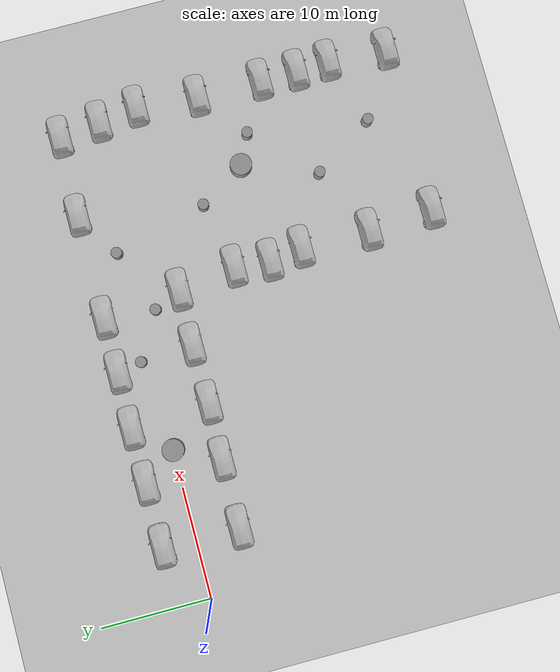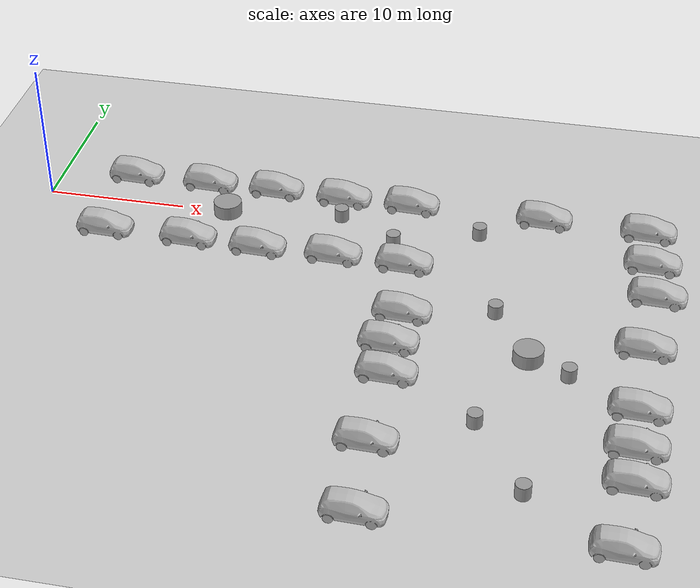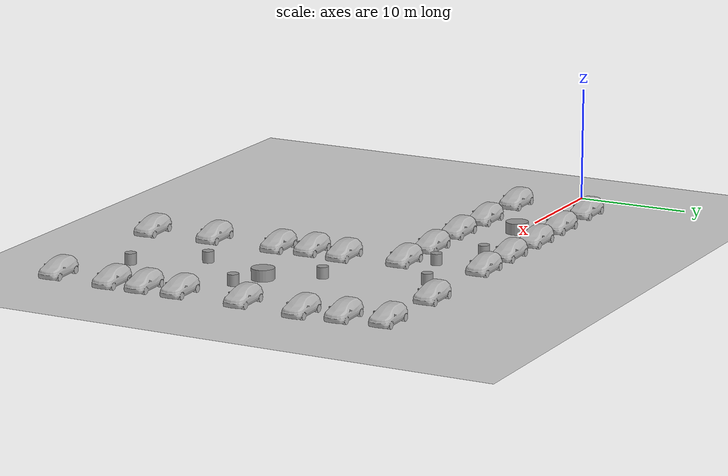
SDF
<sdf version="1.7">
 <world name="default">
  <light name="sun" type="directional">
   <pose>0 0 10 0 -0 0</pose>
   <diffuse>0.8 0.8 0.8 1</diffuse>
   <specular>0.2 0.2 0.2 1</specular>
   <attenuation>
    <range>1000</range>
    <constant>0.9</constant>
    <linear>0.01</linear>
    <quadratic>0.001</quadratic>
   </attenuation>
   <direction>-0.5 0.1 -0.9</direction>
   <spot><inner_angle>0</inner_angle><outer_angle>0</outer_angle><falloff>0</falloff></spot>
  </light>
  <model name="ground_plane">
   <static>1</static>
   <link name="link">
    <collision name="collision">
     <geometry><plane><normal>0 0 1</normal><size>100 100</size></plane></geometry>
     <surface><friction><ode><mu>100</mu><mu2>50</mu2></ode></friction></surface>
    </collision>
    <visual name="visual">
     <cast_shadows>0</cast_shadows>
     <geometry><plane><normal>0 0 1</normal><size>100 100</size></plane></geometry>
     <material>
      <script><uri>file://media/materials/scripts/gazebo.material</uri><name>Gazebo/Grey</name></script>
     </material>
    </visual>
   </link>
  </model>
  <gravity>0 0 -9.8</gravity>
  <magnetic_field>6e-06 2.3e-05 -4.2e-05</magnetic_field>
  <atmosphere type="adiabatic"/>
  <physics name="default_physics" default="0" type="ode">
   <max_step_size>0.001</max_step_size>
   <real_time_factor>1</real_time_factor>
   <real_time_update_rate>1000</real_time_update_rate>
  </physics>
  <scene><ambient>0.4 0.4 0.4 1</ambient><background>0.7 0.7 0.7 1</background><shadows>1</shadows></scene>
  <spherical_coordinates>
   <surface_model>EARTH_WGS84</surface_model>
   <latitude_deg>0</latitude_deg>
   <longitude_deg>0</longitude_deg>
   <elevation>0</elevation>
   <heading_deg>0</heading_deg>
  </spherical_coordinates>
  <model name="hatchback_red">
   <static>1</static>
   <link name="link">
    <collision name="collision">
     <pose>0 0 0 0 -0 1.5708</pose>
     <geometry>
      <mesh><scale>0.0254 0.0254 0.0254</scale><uri>model://hatchback_red/meshes/hatchback.obj</uri></mesh>
     </geometry>
    </collision>
    <visual name="visual">
     <pose>0 0 0 0 -0 1.5708</pose>
     <geometry>
      <mesh><scale>0.0254 0.0254 0.0254</scale><uri>model://hatchback_red/meshes/hatchback.obj</uri></mesh>
     </geometry>
    </visual>
   </link>
   <pose>15.953 3.10391 0 0 -0 0</pose>
  </model>
  <model name="hatchback_red_clone">
   <static>1</static>
   <link name="link">
    <collision name="collision">
     <pose>0 0 0 0 -0 1.5708</pose>
     <geometry>
      <mesh><scale>0.0254 0.0254 0.0254</scale><uri>model://hatchback_red/meshes/hatchback.obj</uri></mesh>
     </geometry>
    </collision>
    <visual name="visual">
     <pose>0 0 0 0 -0 1.5708</pose>
     <geometry>
      <mesh><scale>0.0254 0.0254 0.0254</scale><uri>model://hatchback_red/meshes/hatchback.obj</uri></mesh>
     </geometry>
    </visual>
   </link>
   <pose>5.27619 2.97949 0 0 -0 0</pose>
  </model>
  <model name="hatchback_red_clone_0">
   <static>1</static>
   <link name="link">
    <collision name="collision">
     <pose>0 0 0 0 -0 1.5708</pose>
     <geometry>
      <mesh><scale>0.0254 0.0254 0.0254</scale><uri>model://hatchback_red/meshes/hatchback.obj</uri></mesh>
     </geometry>
    </collision>
    <visual name="visual">
     <pose>0 0 0 0 -0 1.5708</pose>
     <geometry>
      <mesh><scale>0.0254 0.0254 0.0254</scale><uri>model://hatchback_red/meshes/hatchback.obj</uri></mesh>
     </geometry>
    </visual>
   </link>
   <pose>10.9474 3.03597 0 0 -0 0</pose>
  </model>
  <model name="hatchback_red_clone_1">
   <static>1</static>
   <link name="link">
    <collision name="collision">
     <pose>0 0 0 0 -0 1.5708</pose>
     <geometry>
      <mesh><scale>0.0254 0.0254 0.0254</scale><uri>model://hatchback_red/meshes/hatchback.obj</uri></mesh>
     </geometry>
    </collision>
    <visual name="visual">
     <pose>0 0 0 0 -0 1.5708</pose>
     <geometry>
      <mesh><scale>0.0254 0.0254 0.0254</scale><uri>model://hatchback_red/meshes/hatchback.obj</uri></mesh>
     </geometry>
    </visual>
   </link>
   <pose>21.0597 3.02119 0 0 -0 0</pose>
  </model>
  <model name="hatchback_red_clone_2">
   <static>1</static>
   <link name="link">
    <collision name="collision">
     <pose>0 0 0 0 -0 1.5708</pose>
     <geometry>
      <mesh><scale>0.0254 0.0254 0.0254</scale><uri>model://hatchback_red/meshes/hatchback.obj</uri></mesh>
     </geometry>
    </collision>
    <visual name="visual">
     <pose>0 0 0 0 -0 1.5708</pose>
     <geometry>
      <mesh><scale>0.0254 0.0254 0.0254</scale><uri>model://hatchback_red/meshes/hatchback.obj</uri></mesh>
     </geometry>
    </visual>
   </link>
   <pose>26.0705 3.0562 0 0 -0 0</pose>
  </model>
  <model name="hatchback_red_clone_3">
   <static>1</static>
   <link name="link">
    <collision name="collision">
     <pose>0 0 0 0 -0 1.5708</pose>
     <geometry>
      <mesh><scale>0.0254 0.0254 0.0254</scale><uri>model://hatchback_red/meshes/hatchback.obj</uri></mesh>
     </geometry>
    </collision>
    <visual name="visual">
     <pose>0 0 0 0 -0 1.5708</pose>
     <geometry>
      <mesh><scale>0.0254 0.0254 0.0254</scale><uri>model://hatchback_red/meshes/hatchback.obj</uri></mesh>
     </geometry>
    </visual>
   </link>
   <pose>5.16874 -3.97291 0 0 -0 0</pose>
  </model>
  <model name="hatchback_red_clone_4">
   <static>1</static>
   <link name="link">
    <collision name="collision">
     <pose>0 0 0 0 -0 1.5708</pose>
     <geometry>
      <mesh><scale>0.0254 0.0254 0.0254</scale><uri>model://hatchback_red/meshes/hatchback.obj</uri></mesh>
     </geometry>
    </collision>
    <visual name="visual">
     <pose>0 0 0 0 -0 1.5708</pose>
     <geometry>
      <mesh><scale>0.0254 0.0254 0.0254</scale><uri>model://hatchback_red/meshes/hatchback.obj</uri></mesh>
     </geometry>
    </visual>
   </link>
   <pose>11.2993 -3.98709 0 0 -0 0</pose>
  </model>
  <model name="hatchback_red_clone_5">
   <static>1</static>
   <link name="link">
    <collision name="collision">
     <pose>0 0 0 0 -0 1.5708</pose>
     <geometry>
      <mesh><scale>0.0254 0.0254 0.0254</scale><uri>model://hatchback_red/meshes/hatchback.obj</uri></mesh>
     </geometry>
    </collision>
    <visual name="visual">
     <pose>0 0 0 0 -0 1.5708</pose>
     <geometry>
      <mesh><scale>0.0254 0.0254 0.0254</scale><uri>model://hatchback_red/meshes/hatchback.obj</uri></mesh>
     </geometry>
    </visual>
   </link>
   <pose>16.3826 -4.12348 0 0 -0 0</pose>
  </model>
  <model name="hatchback_red_clone_6">
   <static>1</static>
   <link name="link">
    <collision name="collision">
     <pose>0 0 0 0 -0 1.5708</pose>
     <geometry>
      <mesh><scale>0.0254 0.0254 0.0254</scale><uri>model://hatchback_red/meshes/hatchback.obj</uri></mesh>
     </geometry>
    </collision>
    <visual name="visual">
     <pose>0 0 0 0 -0 1.5708</pose>
     <geometry>
      <mesh><scale>0.0254 0.0254 0.0254</scale><uri>model://hatchback_red/meshes/hatchback.obj</uri></mesh>
     </geometry>
    </visual>
   </link>
   <pose>21.7615 -3.98732 0 0 -0 0</pose>
  </model>
  <model name="hatchback_red_clone_7">
   <static>1</static>
   <link name="link">
    <collision name="collision">
     <pose>0 0 0 0 -0 1.5708</pose>
     <geometry>
      <mesh><scale>0.0254 0.0254 0.0254</scale><uri>model://hatchback_red/meshes/hatchback.obj</uri></mesh>
     </geometry>
    </collision>
    <visual name="visual">
     <pose>0 0 0 0 -0 1.5708</pose>
     <geometry>
      <mesh><scale>0.0254 0.0254 0.0254</scale><uri>model://hatchback_red/meshes/hatchback.obj</uri></mesh>
     </geometry>
    </visual>
   </link>
   <pose>26.7964 -4.08175 0 0 -0 0</pose>
  </model>
  <model name="hatchback_red_clone_2_clone">
   <static>1</static>
   <link name="link">
    <collision name="collision">
     <pose>0 0 0 0 -0 1.5708</pose>
     <geometry>
      <mesh><scale>0.0254 0.0254 0.0254</scale><uri>model://hatchback_red/meshes/hatchback.obj</uri></mesh>
     </geometry>
    </collision>
    <visual name="visual">
     <pose>0 0 0 0 -0 1.5708</pose>
     <geometry>
      <mesh><scale>0.0254 0.0254 0.0254</scale><uri>model://hatchback_red/meshes/hatchback.obj</uri></mesh>
     </geometry>
    </visual>
   </link>
   <pose>35.6851 3.0852 0 0 -0 0</pose>
  </model>
  <model name="hatchback_red_clone_2_clone_0">
   <static>1</static>
   <link name="link">
    <collision name="collision">
     <pose>0 0 0 0 -0 1.5708</pose>
     <geometry>
      <mesh><scale>0.0254 0.0254 0.0254</scale><uri>model://hatchback_red/meshes/hatchback.obj</uri></mesh>
     </geometry>
    </collision>
    <visual name="visual">
     <pose>0 0 0 0 -0 1.5708</pose>
     <geometry>
      <mesh><scale>0.0254 0.0254 0.0254</scale><uri>model://hatchback_red/meshes/hatchback.obj</uri></mesh>
     </geometry>
    </visual>
   </link>
   <pose>43.0992 2.90414 0 0 -0 0</pose>
  </model>
  <model name="hatchback_red_clone_2_clone_1">
   <static>1</static>
   <link name="link">
    <collision name="collision">
     <pose>0 0 0 0 -0 1.5708</pose>
     <geometry>
      <mesh><scale>0.0254 0.0254 0.0254</scale><uri>model://hatchback_red/meshes/hatchback.obj</uri></mesh>
     </geometry>
    </collision>
    <visual name="visual">
     <pose>0 0 0 0 -0 1.5708</pose>
     <geometry>
      <mesh><scale>0.0254 0.0254 0.0254</scale><uri>model://hatchback_red/meshes/hatchback.obj</uri></mesh>
     </geometry>
    </visual>
   </link>
   <pose>43.5853 -0.855905 0 0 -0 0</pose>
  </model>
  <model name="hatchback_red_clone_2_clone_3">
   <static>1</static>
   <link name="link">
    <collision name="collision">
     <pose>0 0 0 0 -0 1.5708</pose>
     <geometry>
      <mesh><scale>0.0254 0.0254 0.0254</scale><uri>model://hatchback_red/meshes/hatchback.obj</uri></mesh>
     </geometry>
    </collision>
    <visual name="visual">
     <pose>0 0 0 0 -0 1.5708</pose>
     <geometry>
      <mesh><scale>0.0254 0.0254 0.0254</scale><uri>model://hatchback_red/meshes/hatchback.obj</uri></mesh>
     </geometry>
    </visual>
   </link>
   <pose>44.0875 -4.4564 0 0 -0 0</pose>
  </model>
  <model name="hatchback_red_clone_2_clone_3_clone">
   <static>1</static>
   <link name="link">
    <collision name="collision">
     <pose>0 0 0 0 -0 1.5708</pose>
     <geometry>
      <mesh><scale>0.0254 0.0254 0.0254</scale><uri>model://hatchback_red/meshes/hatchback.obj</uri></mesh>
     </geometry>
    </collision>
    <visual name="visual">
     <pose>0 0 0 0 -0 1.5708</pose>
     <geometry>
      <mesh><scale>0.0254 0.0254 0.0254</scale><uri>model://hatchback_red/meshes/hatchback.obj</uri></mesh>
     </geometry>
    </visual>
   </link>
   <pose>43.6363 -19.4934 0 0 -0 0</pose>
  </model>
  <model name="hatchback_red_clone_2_clone_0_clone">
   <static>1</static>
   <link name="link">
    <collision name="collision">
     <pose>0 0 0 0 -0 1.5708</pose>
     <geometry>
      <mesh><scale>0.0254 0.0254 0.0254</scale><uri>model://hatchback_red/meshes/hatchback.obj</uri></mesh>
     </geometry>
    </collision>
    <visual name="visual">
     <pose>0 0 0 0 -0 1.5708</pose>
     <geometry>
      <mesh><scale>0.0254 0.0254 0.0254</scale><uri>model://hatchback_red/meshes/hatchback.obj</uri></mesh>
     </geometry>
    </visual>
   </link>
   <pose>43.6194 -10.1053 0 0 -0 0</pose>
  </model>
  <model name="hatchback_red_clone_2_clone_0_clone_0">
   <static>1</static>
   <link name="link">
    <collision name="collision">
     <pose>0 0 0 0 -0 1.5708</pose>
     <geometry>
      <mesh><scale>0.0254 0.0254 0.0254</scale><uri>model://hatchback_red/meshes/hatchback.obj</uri></mesh>
     </geometry>
    </collision>
    <visual name="visual">
     <pose>0 0 0 0 -0 1.5708</pose>
     <geometry>
      <mesh><scale>0.0254 0.0254 0.0254</scale><uri>model://hatchback_red/meshes/hatchback.obj</uri></mesh>
     </geometry>
    </visual>
   </link>
   <pose>27.7552 -15.7006 0 0 -0 0</pose>
  </model>
  <model name="hatchback_red_clone_2_clone_0_clone_1">
   <static>1</static>
   <link name="link">
    <collision name="collision">
     <pose>0 0 0 0 -0 1.5708</pose>
     <geometry>
      <mesh><scale>0.0254 0.0254 0.0254</scale><uri>model://hatchback_red/meshes/hatchback.obj</uri></mesh>
     </geometry>
    </collision>
    <visual name="visual">
     <pose>0 0 0 0 -0 1.5708</pose>
     <geometry>
      <mesh><scale>0.0254 0.0254 0.0254</scale><uri>model://hatchback_red/meshes/hatchback.obj</uri></mesh>
     </geometry>
    </visual>
   </link>
   <pose>27.3143 -12.6693 0 0 -0 0</pose>
  </model>
  <model name="hatchback_red_clone_2_clone_2_clone">
   <static>1</static>
   <link name="link">
    <collision name="collision">
     <pose>0 0 0 0 -0 1.5708</pose>
     <geometry>
      <mesh><scale>0.0254 0.0254 0.0254</scale><uri>model://hatchback_red/meshes/hatchback.obj</uri></mesh>
     </geometry>
    </collision>
    <visual name="visual">
     <pose>0 0 0 0 -0 1.5708</pose>
     <geometry>
      <mesh><scale>0.0254 0.0254 0.0254</scale><uri>model://hatchback_red/meshes/hatchback.obj</uri></mesh>
     </geometry>
    </visual>
   </link>
   <pose>27.6005 -9.40816 0 0 -0 0</pose>
  </model>
  <model name="hatchback_red_clone_2_clone_0_clone_0_clone">
   <static>1</static>
   <link name="link">
    <collision name="collision">
     <pose>0 0 0 0 -0 1.5708</pose>
     <geometry>
      <mesh><scale>0.0254 0.0254 0.0254</scale><uri>model://hatchback_red/meshes/hatchback.obj</uri></mesh>
     </geometry>
    </collision>
    <visual name="visual">
     <pose>0 0 0 0 -0 1.5708</pose>
     <geometry>
      <mesh><scale>0.0254 0.0254 0.0254</scale><uri>model://hatchback_red/meshes/hatchback.obj</uri></mesh>
     </geometry>
    </visual>
   </link>
   <pose>43.6178 -16.0729 0 0 -0 0</pose>
  </model>
  <model name="hatchback_red_clone_2_clone_0_clone_0_clone_0">
   <static>1</static>
   <link name="link">
    <collision name="collision">
     <pose>0 0 0 0 -0 1.5708</pose>
     <geometry>
      <mesh><scale>0.0254 0.0254 0.0254</scale><uri>model://hatchback_red/meshes/hatchback.obj</uri></mesh>
     </geometry>
    </collision>
    <visual name="visual">
     <pose>0 0 0 0 -0 1.5708</pose>
     <geometry>
      <mesh><scale>0.0254 0.0254 0.0254</scale><uri>model://hatchback_red/meshes/hatchback.obj</uri></mesh>
     </geometry>
    </visual>
   </link>
   <pose>27.704 -22.0514 0 0 -0 0</pose>
  </model>
  <model name="hatchback_red_clone_2_clone_0_clone_0_clone_1">
   <static>1</static>
   <link name="link">
    <collision name="collision">
     <pose>0 0 0 0 -0 1.5708</pose>
     <geometry>
      <mesh><scale>0.0254 0.0254 0.0254</scale><uri>model://hatchback_red/meshes/hatchback.obj</uri></mesh>
     </geometry>
    </collision>
    <visual name="visual">
     <pose>0 0 0 0 -0 1.5708</pose>
     <geometry>
      <mesh><scale>0.0254 0.0254 0.0254</scale><uri>model://hatchback_red/meshes/hatchback.obj</uri></mesh>
     </geometry>
    </visual>
   </link>
   <pose>43.7815 -22.5145 0 0 -0 0</pose>
  </model>
  <model name="hatchback_red_clone_2_clone_0_clone_0_clone_2">
   <static>1</static>
   <link name="link">
    <collision name="collision">
     <pose>0 0 0 0 -0 1.5708</pose>
     <geometry>
      <mesh><scale>0.0254 0.0254 0.0254</scale><uri>model://hatchback_red/meshes/hatchback.obj</uri></mesh>
     </geometry>
    </collision>
    <visual name="visual">
     <pose>0 0 0 0 -0 1.5708</pose>
     <geometry>
      <mesh><scale>0.0254 0.0254 0.0254</scale><uri>model://hatchback_red/meshes/hatchback.obj</uri></mesh>
     </geometry>
    </visual>
   </link>
   <pose>28.1794 -27.993 0 0 -0 0</pose>
  </model>
  <model name="hatchback_red_clone_2_clone_0_clone_0_clone_3">
   <static>1</static>
   <link name="link">
    <collision name="collision">
     <pose>0 0 0 0 -0 1.5708</pose>
     <geometry>
      <mesh><scale>0.0254 0.0254 0.0254</scale><uri>model://hatchback_red/meshes/hatchback.obj</uri></mesh>
     </geometry>
    </collision>
    <visual name="visual">
     <pose>0 0 0 0 -0 1.5708</pose>
     <geometry>
      <mesh><scale>0.0254 0.0254 0.0254</scale><uri>model://hatchback_red/meshes/hatchback.obj</uri></mesh>
     </geometry>
    </visual>
   </link>
   <pose>43.4607 -27.9349 0 0 -0 0</pose>
  </model>
  <model name="unit_cylinder_1">
   <pose>21.6965 0.76664 0.499992 -3e-06 3e-06 0</pose>
   <link name="link">
    <inertial>
     <mass>1</mass>
     <inertia><ixx>0.145833</ixx><ixy>0</ixy><ixz>0</ixz><iyy>0.145833</iyy><iyz>0</iyz><izz>0.125</izz></inertia>
    </inertial>
    <collision name="collision">
     <geometry><cylinder><radius>0.5</radius><length>1</length></cylinder></geometry>
    </collision>
    <visual name="visual">
     <geometry><cylinder><radius>0.5</radius><length>1</length></cylinder></geometry>
     <material>
      <script><name>Gazebo/Grey</name><uri>file://media/materials/scripts/gazebo.material</uri></script>
     </material>
    </visual>
   </link>
  </model>
  <model name="unit_cylinder_1_clone">
   <pose>25.9089 -1.63551 0.499992 -3e-06 2e-06 0</pose>
   <link name="link">
    <inertial>
     <mass>1</mass>
     <inertia><ixx>0.145833</ixx><ixy>0</ixy><ixz>0</ixz><iyy>0.145833</iyy><iyz>0</iyz><izz>0.125</izz></inertia>
    </inertial>
    <collision name="collision">
     <geometry><cylinder><radius>0.5</radius><length>1</length></cylinder></geometry>
    </collision>
    <visual name="visual">
     <geometry><cylinder><radius>0.5</radius><length>1</length></cylinder></geometry>
     <material>
      <script><name>Gazebo/Grey</name><uri>file://media/materials/scripts/gazebo.material</uri></script>
     </material>
    </visual>
   </link>
  </model>
  <model name="unit_cylinder_1_clone_0">
   <pose>31.7279 0.468861 0.499998 3e-06 -3e-06 0</pose>
   <link name="link">
    <inertial>
     <mass>1</mass>
     <inertia><ixx>0.145833</ixx><ixy>0</ixy><ixz>0</ixz><iyy>0.145833</iyy><iyz>0</iyz><izz>0.125</izz></inertia>
    </inertial>
    <collision name="collision">
     <geometry><cylinder><radius>0.5</radius><length>1</length></cylinder></geometry>
    </collision>
    <visual name="visual">
     <geometry><cylinder><radius>0.5</radius><length>1</length></cylinder></geometry>
     <material>
      <script><name>Gazebo/Grey</name><uri>file://media/materials/scripts/gazebo.material</uri></script>
     </material>
    </visual>
   </link>
  </model>
  <model name="unit_cylinder_1_clone_1">
   <pose>33.9964 -8.15533 0.5 0 -0 0</pose>
   <link name="link">
    <inertial>
     <mass>1</mass>
     <inertia><ixx>0.145833</ixx><ixy>0</ixy><ixz>0</ixz><iyy>0.145833</iyy><iyz>0</iyz><izz>0.125</izz></inertia>
    </inertial>
    <collision name="collision">
     <geometry><cylinder><radius>0.5</radius><length>1</length></cylinder></geometry>
    </collision>
    <visual name="visual">
     <geometry><cylinder><radius>0.5</radius><length>1</length></cylinder></geometry>
     <material>
      <script><name>Gazebo/Grey</name><uri>file://media/materials/scripts/gazebo.material</uri></script>
     </material>
    </visual>
   </link>
  </model>
  <model name="unit_cylinder_1_clone_2">
   <pose>39.3858 -13.6614 0.499992 -3e-06 3e-06 0</pose>
   <link name="link">
    <inertial>
     <mass>1</mass>
     <inertia><ixx>0.145833</ixx><ixy>0</ixy><ixz>0</ixz><iyy>0.145833</iyy><iyz>0</iyz><izz>0.125</izz></inertia>
    </inertial>
    <collision name="collision">
     <geometry><cylinder><radius>0.5</radius><length>1</length></cylinder></geometry>
    </collision>
    <visual name="visual">
     <geometry><cylinder><radius>0.5</radius><length>1</length></cylinder></geometry>
     <material>
      <script><name>Gazebo/Grey</name><uri>file://media/materials/scripts/gazebo.material</uri></script>
     </material>
    </visual>
   </link>
  </model>
  <model name="unit_cylinder_1_clone_3">
   <pose>34.1811 -19.0735 0.499992 -3e-06 3e-06 0</pose>
   <link name="link">
    <inertial>
     <mass>1</mass>
     <inertia><ixx>0.145833</ixx><ixy>0</ixy><ixz>0</ixz><iyy>0.145833</iyy><iyz>0</iyz><izz>0.125</izz></inertia>
    </inertial>
    <collision name="collision">
     <geometry><cylinder><radius>0.5</radius><length>1</length></cylinder></geometry>
    </collision>
    <visual name="visual">
     <geometry><cylinder><radius>0.5</radius><length>1</length></cylinder></geometry>
     <material>
      <script><name>Gazebo/Grey</name><uri>file://media/materials/scripts/gazebo.material</uri></script>
     </material>
    </visual>
   </link>
  </model>
  <model name="unit_cylinder_1_clone_4">
   <pose>37.7721 -24.563 0.499997 3e-06 4e-06 -0</pose>
   <link name="link">
    <inertial>
     <mass>1</mass>
     <inertia><ixx>0.145833</ixx><ixy>0</ixy><ixz>0</ixz><iyy>0.145833</iyy><iyz>0</iyz><izz>0.125</izz></inertia>
    </inertial>
    <collision name="collision">
     <geometry><cylinder><radius>0.5</radius><length>1</length></cylinder></geometry>
    </collision>
    <visual name="visual">
     <geometry><cylinder><radius>0.5</radius><length>1</length></cylinder></geometry>
     <material>
      <script><name>Gazebo/Grey</name><uri>file://media/materials/scripts/gazebo.material</uri></script>
     </material>
    </visual>
   </link>
  </model>
  <model name="unit_cylinder_1m">
   <link name="link">
    <inertial>
     <mass>1</mass>
     <inertia><ixx>0.145833</ixx><ixy>0</ixy><ixz>0</ixz><iyy>0.145833</iyy><iyz>0</iyz><izz>0.125</izz></inertia>
    </inertial>
    <visual name="visual">
     <geometry><cylinder><radius>1</radius><length>1</length></cylinder></geometry>
     <material>
      <script><name>Gazebo/Grey</name><uri>file://media/materials/scripts/gazebo.material</uri></script>
      <shader type="pixel"><normal_map>__default__</normal_map></shader>
      <ambient>0.3 0.3 0.3 1</ambient>
      <diffuse>0.7 0.7 0.7 1</diffuse>
      <specular>0.01 0.01 0.01 1</specular>
      <emissive>0 0 0 1</emissive>
     </material>
    </visual>
    <collision name="collision">
     <geometry><cylinder><radius>1</radius><length>1</length></cylinder></geometry>
     <surface>
      <friction>
       <ode><mu>1</mu><mu2>1</mu2><fdir1>0 0 0</fdir1><slip1>0</slip1><slip2>0</slip2></ode>
       <torsional>
        <coefficient>1</coefficient>
        <patch_radius>0</patch_radius>
        <surface_radius>0</surface_radius>
        <use_patch_radius>1</use_patch_radius>
        <ode><slip>0</slip></ode>
       </torsional>
      </friction>
      <bounce><restitution_coefficient>0</restitution_coefficient><threshold>1e+06</threshold></bounce>
      <contact>
       <collide_without_contact>0</collide_without_contact>
       <collide_without_contact_bitmask>1</collide_without_contact_bitmask>
       <collide_bitmask>1</collide_bitmask>
       <ode>
        <soft_cfm>0</soft_cfm>
        <soft_erp>0.2</soft_erp>
        <kp>1e+13</kp>
        <kd>1</kd>
        <max_vel>0.01</max_vel>
        <min_depth>0</min_depth>
       </ode>
       <bullet>
        <split_impulse>1</split_impulse>
        <split_impulse_penetration_threshold>-0.01</split_impulse_penetration_threshold>
        <soft_cfm>0</soft_cfm>
        <soft_erp>0.2</soft_erp>
        <kp>1e+13</kp>
        <kd>1</kd>
       </bullet>
      </contact>
     </surface>
    </collision>
   </link>
   <static>0</static>
   <pose>13.4588 -0.061005 0.499997 3e-06 2e-06 0</pose>
  </model>
  <model name="unit_cylinder_1m_clone">
   <link name="link">
    <inertial>
     <mass>1</mass>
     <inertia><ixx>0.145833</ixx><ixy>0</ixy><ixz>0</ixz><iyy>0.145833</iyy><iyz>0</iyz><izz>0.125</izz></inertia>
    </inertial>
    <visual name="visual">
     <geometry><cylinder><radius>1</radius><length>1</length></cylinder></geometry>
     <material>
      <script><name>Gazebo/Grey</name><uri>file://media/materials/scripts/gazebo.material</uri></script>
      <shader type="pixel"><normal_map>__default__</normal_map></shader>
      <ambient>0.3 0.3 0.3 1</ambient>
      <diffuse>0.7 0.7 0.7 1</diffuse>
      <specular>0.01 0.01 0.01 1</specular>
      <emissive>0 0 0 1</emissive>
     </material>
    </visual>
    <collision name="collision">
     <geometry><cylinder><radius>1</radius><length>1</length></cylinder></geometry>
     <surface>
      <friction>
       <ode><mu>1</mu><mu2>1</mu2><fdir1>0 0 0</fdir1><slip1>0</slip1><slip2>0</slip2></ode>
       <torsional>
        <coefficient>1</coefficient>
        <patch_radius>0</patch_radius>
        <surface_radius>0</surface_radius>
        <use_patch_radius>1</use_patch_radius>
        <ode><slip>0</slip></ode>
       </torsional>
      </friction>
      <bounce><restitution_coefficient>0</restitution_coefficient><threshold>1e+06</threshold></bounce>
      <contact>
       <collide_without_contact>0</collide_without_contact>
       <collide_without_contact_bitmask>1</collide_without_contact_bitmask>
       <collide_bitmask>1</collide_bitmask>
       <ode>
        <soft_cfm>0</soft_cfm>
        <soft_erp>0.2</soft_erp>
        <kp>1e+13</kp>
        <kd>1</kd>
        <max_vel>0.01</max_vel>
        <min_depth>0</min_depth>
       </ode>
       <bullet>
        <split_impulse>1</split_impulse>
        <split_impulse_penetration_threshold>-0.01</split_impulse_penetration_threshold>
        <soft_cfm>0</soft_cfm>
        <soft_erp>0.2</soft_erp>
        <kp>1e+13</kp>
        <kd>1</kd>
       </bullet>
      </contact>
     </surface>
    </collision>
   </link>
   <static>0</static>
   <pose>36.6591 -12.363 0.499997 3e-06 2e-06 0</pose>
  </model>
 </world>
</sdf>
